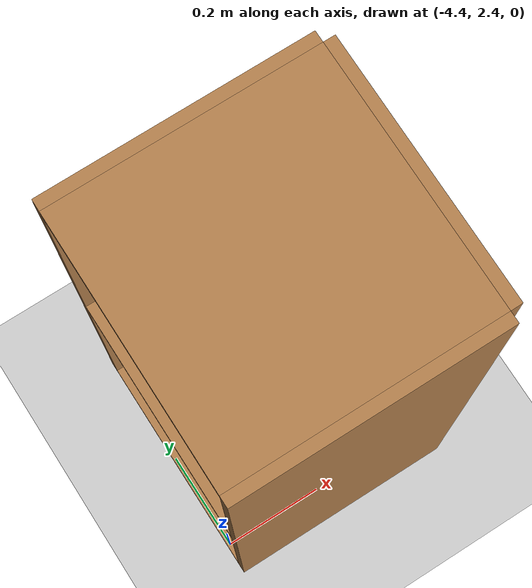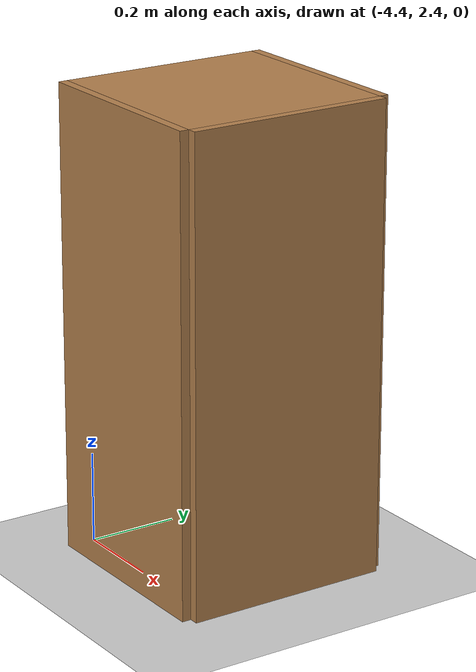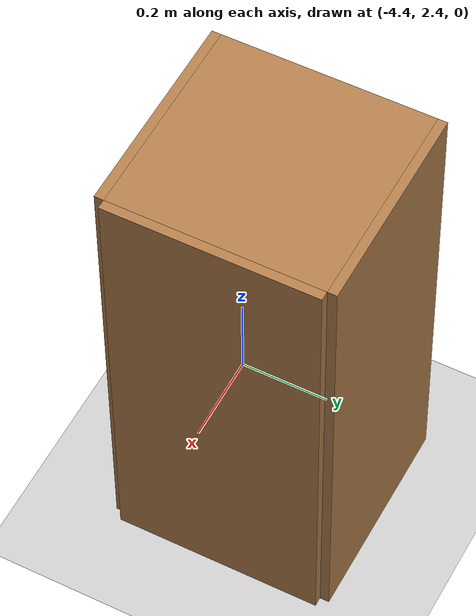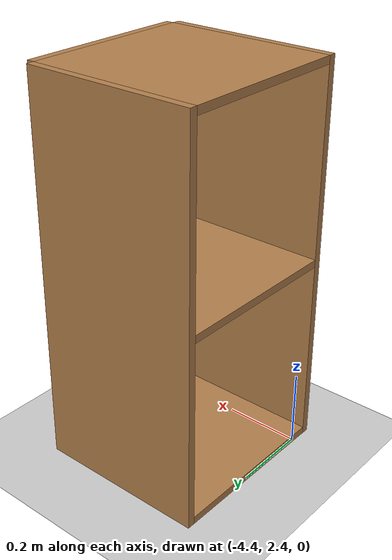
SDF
<sdf version="1.6">
 <world name="default">
  <model name="ground_plane">
   <static>1</static>
   <link name="link">
    <collision name="collision">
     <geometry><plane><normal>0 0 1</normal><size>100 100</size></plane></geometry>
     <surface><friction><ode><mu>100</mu><mu2>50</mu2></ode></friction></surface>
    </collision>
    <visual name="visual">
     <cast_shadows>0</cast_shadows>
     <geometry><plane><normal>0 0 1</normal><size>100 100</size></plane></geometry>
     <material>
      <script><uri>file://media/materials/scripts/gazebo.material</uri><name>Gazebo/Grey</name></script>
     </material>
    </visual>
   </link>
  </model>
  <model name="cabinet">
   <static>1</static>
   <link name="cabinet_bottom_plate">
    <inertial>
     <pose>0 0 -1 0 -0 0</pose>
     <inertia><ixx>2.05</ixx><ixy>0</ixy><ixz>0</ixz><iyy>2.05</iyy><iyz>0</iyz><izz>2.05</izz></inertia>
     <mass>25</mass>
    </inertial>
    <collision name="cabinet_bottom_plate_geom">
     <pose>0 0 0.01 0 -0 0</pose>
     <geometry><box><size>0.45 0.45 0.02</size></box></geometry>
    </collision>
    <visual name="cabinet_bottom_plate_geom_visual">
     <pose>0 0 0.01 0 -0 0</pose>
     <geometry><box><size>0.45 0.45 0.02</size></box></geometry>
     <material>
      <script><uri>file://media/materials/scripts/gazebo.material</uri><name>Gazebo/Wood</name></script>
     </material>
    </visual>
    <collision name="cabinet_bottom_plate_geom_cabinet_back_plate">
     <pose>0.235 0 0.51 0 -0 0</pose>
     <geometry><box><size>0.02 0.45 1.02</size></box></geometry>
    </collision>
    <visual name="cabinet_bottom_plate_geom_cabinet_back_plate_visual">
     <pose>0.235 0 0.51 0 -0 0</pose>
     <geometry><box><size>0.02 0.45 1.02</size></box></geometry>
     <material>
      <script><uri>file://media/materials/scripts/gazebo.material</uri><name>Gazebo/Wood</name></script>
     </material>
    </visual>
    <collision name="cabinet_bottom_plate_geom_cabinet_left_plate">
     <pose>0 0.235 0.51 0 -0 0</pose>
     <geometry><box><size>0.45 0.02 1.02</size></box></geometry>
    </collision>
    <visual name="cabinet_bottom_plate_geom_cabinet_left_plate_visual">
     <pose>0 0.235 0.51 0 -0 0</pose>
     <geometry><box><size>0.45 0.02 1.02</size></box></geometry>
     <material>
      <script><uri>file://media/materials/scripts/gazebo.material</uri><name>Gazebo/Wood</name></script>
     </material>
    </visual>
    <collision name="cabinet_bottom_plate_geom_cabinet_middle_plate">
     <pose>0 0 0.51 0 -0 0</pose>
     <geometry><box><size>0.45 0.45 0.02</size></box></geometry>
    </collision>
    <visual name="cabinet_bottom_plate_geom_cabinet_middle_plate_visual">
     <pose>0 0 0.51 0 -0 0</pose>
     <geometry><box><size>0.45 0.45 0.02</size></box></geometry>
     <material>
      <script><uri>file://media/materials/scripts/gazebo.material</uri><name>Gazebo/Wood</name></script>
     </material>
    </visual>
    <collision name="cabinet_bottom_plate_geom_cabinet_right_plate">
     <pose>0 -0.235 0.51 0 -0 0</pose>
     <geometry><box><size>0.45 0.02 1.02</size></box></geometry>
    </collision>
    <visual name="cabinet_bottom_plate_geom_cabinet_right_plate_visual">
     <pose>0 -0.235 0.51 0 -0 0</pose>
     <geometry><box><size>0.45 0.02 1.02</size></box></geometry>
     <material>
      <script><uri>file://media/materials/scripts/gazebo.material</uri><name>Gazebo/Wood</name></script>
     </material>
    </visual>
    <collision name="cabinet_bottom_plate_geom_cabinet_top_plate">
     <pose>0 0 1.01 0 -0 0</pose>
     <geometry><box><size>0.45 0.45 0.02</size></box></geometry>
    </collision>
    <visual name="cabinet_bottom_plate_geom_cabinet_top_plate_visual">
     <pose>0 0 1.01 0 -0 0</pose>
     <geometry><box><size>0.45 0.45 0.02</size></box></geometry>
     <material>
      <script><uri>file://media/materials/scripts/gazebo.material</uri><name>Gazebo/Wood</name></script>
     </material>
    </visual>
   </link>
   <pose>-4.18074 2.585 0 0 -0 0</pose>
  </model>
  <model name="asphalt_plane">
   <pose>-0.102711 -1.62286 0 0 -0 0</pose>
   <scale>1 1 1</scale>
   <link name="link">
    <pose>-0.102711 -1.62286 0 0 -0 0</pose>
    <velocity>0 0 0 0 -0 0</velocity>
    <acceleration>0 0 0 0 -0 0</acceleration>
    <wrench>0 0 0 0 -0 0</wrench>
   </link>
  </model>
 </world>
</sdf>
